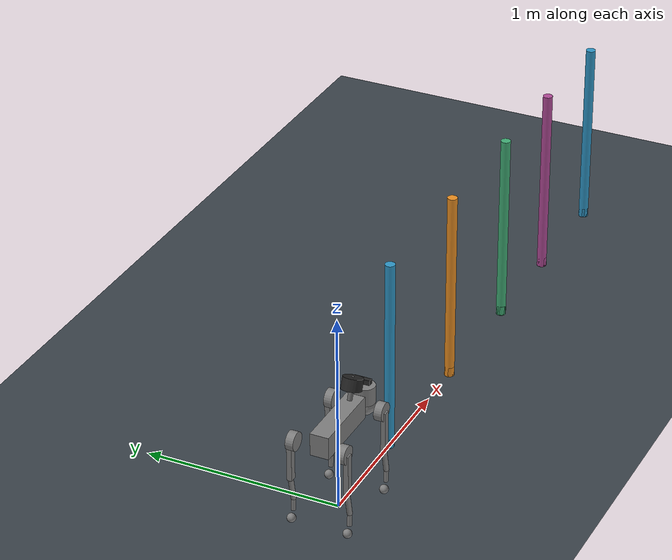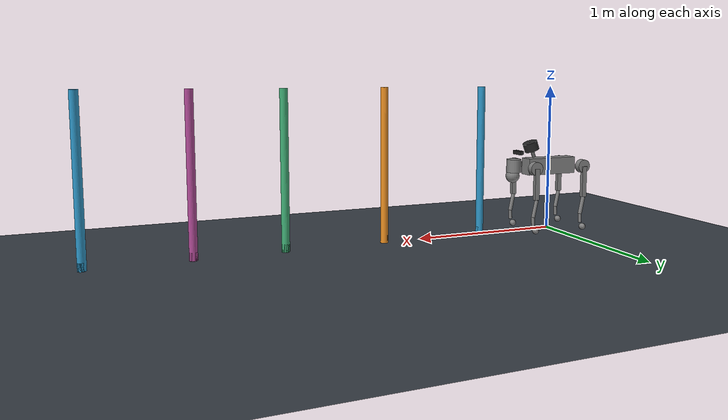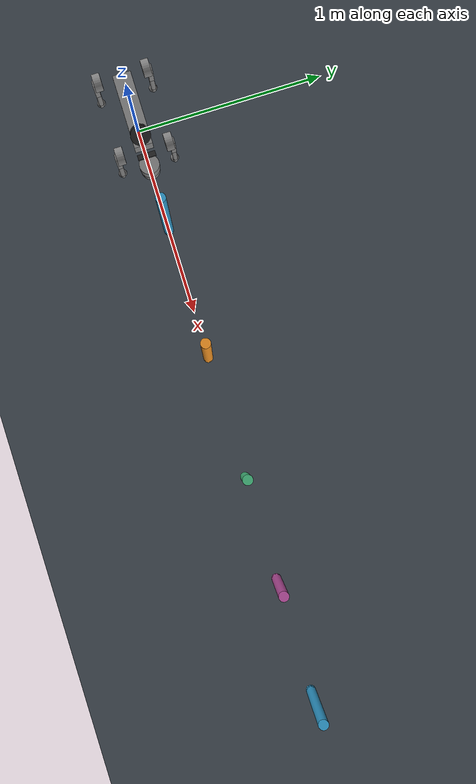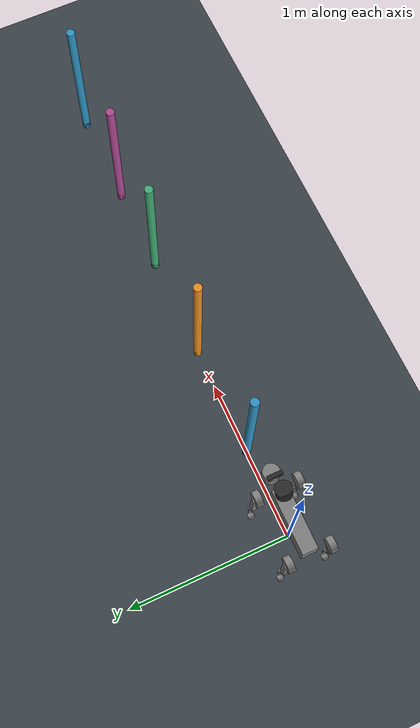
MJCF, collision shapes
<mujoco model="go2_barkour_weave">
  <include file="go2.xml"/>
  <visual>
    <headlight diffuse="0.75 0.75 0.75" ambient="0.35 0.35 0.35" specular="0 0 0"/>
  </visual>
  <worldbody>
    <light pos="1.8 -3 5" dir="0 0 -1" directional="true"/>
    <geom name="floor" type="plane" size="6 3 0.05" friction="1 0.01 0.001"
          rgba="0.23 0.26 0.29 1"/>
    <!-- Tall poles provide the visible weave cue but do not block the robot. -->
    <geom name="weave_pole_1" class="visual" type="cylinder" pos="0.55 0 0.50"
          size="0.025 0.50" rgba="0.18 0.59 0.78 1"/>
    <geom name="weave_pole_2" class="visual" type="cylinder" pos="1.25 0 0.50"
          size="0.025 0.50" rgba="0.92 0.56 0.13 1"/>
    <geom name="weave_pole_3" class="visual" type="cylinder" pos="1.90 0 0.50"
          size="0.025 0.50" rgba="0.25 0.68 0.46 1"/>
    <geom name="weave_pole_4" class="visual" type="cylinder" pos="2.45 0 0.50"
          size="0.025 0.50" rgba="0.69 0.29 0.59 1"/>
    <geom name="weave_pole_5" class="visual" type="cylinder" pos="3.05 0 0.50"
          size="0.025 0.50" rgba="0.18 0.59 0.78 1"/>

    <!-- Only the source-sized 5 cm diameter/high bases participate in collision. -->
    <geom name="weave_pole_base_1" class="collision" type="cylinder" pos="0.55 0 0.025"
          size="0.025 0.025" friction="1 0.01 0.001" rgba="0.18 0.59 0.78 1"/>
    <geom name="weave_pole_base_2" class="collision" type="cylinder" pos="1.25 0 0.025"
          size="0.025 0.025" friction="1 0.01 0.001" rgba="0.92 0.56 0.13 1"/>
    <geom name="weave_pole_base_3" class="collision" type="cylinder" pos="1.90 0 0.025"
          size="0.025 0.025" friction="1 0.01 0.001" rgba="0.25 0.68 0.46 1"/>
    <geom name="weave_pole_base_4" class="collision" type="cylinder" pos="2.45 0 0.025"
          size="0.025 0.025" friction="1 0.01 0.001" rgba="0.69 0.29 0.59 1"/>
    <geom name="weave_pole_base_5" class="collision" type="cylinder" pos="3.05 0 0.025"
          size="0.025 0.025" friction="1 0.01 0.001" rgba="0.18 0.59 0.78 1"/>
    <camera name="evidence" mode="trackcom" pos="0 -1.9 1.1"
            zaxis="0 -0.923 0.385" fovy="34"/>
  </worldbody>
  <keyframe>
    <key name="task_start"
         qpos="0 0 0.29 1 0 0 0 0 0.9 -1.8 0 0.9 -1.8 0 0.9 -1.8 0 0.9 -1.8"
         ctrl="0 0.9 -1.8 0 0.9 -1.8 0 0.9 -1.8 0 0.9 -1.8"/>
  </keyframe>
</mujoco>

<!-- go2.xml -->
<mujoco model="go2">
  <compiler angle="radian" meshdir="assets" autolimits="true" />

  <option cone="elliptic" impratio="100" />

  <visual>
    <global offwidth="800" offheight="600"/>
  </visual>

  <default>
    <default class="go2">
      <geom friction="0.4" margin="0.001" condim="1"/>
      <joint axis="0 1 0" damping="0.1" armature="0.01" frictionloss="0.2"/>
      <motor ctrlrange="-23.7 23.7"/>
      <default class="abduction">
        <joint axis="1 0 0" range="-1.0472 1.0472"/>
      </default>
      <default class="hip">
        <default class="front_hip">
          <joint range="-1.5708 3.4907"/>
        </default>
        <default class="back_hip">
          <joint range="-0.5236 4.5379"/>
        </default>
      </default>
      <default class="knee">
        <joint range="-2.7227 -0.83776"/>
        <motor ctrlrange="-45.43 45.43"/>
      </default>
      <default class="visual">
        <geom type="mesh" contype="0" conaffinity="0" group="2"/>
      </default>
      <default class="collision">
        <geom group="3"/>
        <default class="foot">
          <geom size="0.022" pos="-0.002 0 -0.213" priority="1" condim="6"
            friction="0.8 0.02 0.01"/>
        </default>
      </default>
    </default>
  </default>

  <asset>
    <texture type="skybox" builtin="gradient" rgb1="0.48 0.56 0.66"
      rgb2="0.12 0.14 0.18" width="512" height="3072" />
    <material name="metal" rgba=".9 .95 .95 1" />
    <material name="black" rgba="0 0 0 1" />
    <material name="white" rgba="1 1 1 1" />
    <material name="gray" rgba="0.671705 0.692426 0.774270 1" />

    <mesh file="base_0.obj" />
    <mesh file="base_1.obj" />
    <mesh file="base_2.obj" />
    <mesh file="base_3.obj" />
    <mesh file="base_4.obj" />
    <mesh file="hip_0.obj" />
    <mesh file="hip_1.obj" />
    <mesh file="thigh_0.obj" />
    <mesh file="thigh_1.obj" />
    <mesh file="thigh_mirror_0.obj" />
    <mesh file="thigh_mirror_1.obj" />
    <mesh file="calf_0.obj" />
    <mesh file="calf_1.obj" />
    <mesh file="calf_mirror_0.obj" />
    <mesh file="calf_mirror_1.obj" />
    <mesh file="foot.obj" />
  </asset>

  <worldbody>
    <body name="base_link" pos="0 0 0.445" childclass="go2">
      <inertial pos="0.021112 0 -0.005366" quat="-0.000543471 0.713435 -0.00173769 0.700719"
        mass="6.921"
        diaginertia="0.107027 0.0980771 0.0244531" />
      <freejoint />
      <geom mesh="base_0" material="black" class="visual" />
      <geom mesh="base_1" material="black" class="visual" />
      <geom mesh="base_2" material="black" class="visual" />
      <geom mesh="base_3" material="white" class="visual" />
      <geom mesh="base_4" material="gray" class="visual" />
      <geom size="0.1881 0.04675 0.057" type="box" class="collision" />
      <geom size="0.05 0.045" pos="0.285 0 0.01" type="cylinder" class="collision" />
      <geom size="0.047" pos="0.293 0 -0.06" class="collision" />
      <site name="imu" pos="-0.02557 0 0.04232" />

      <!-- Livox MID-360 — shoulder area, 20 deg FORWARD tilt -->
      <!-- pos: x=0.15 (shoulder), z=0.14 (on bracket above trunk top) -->
      <!-- euler: +0.349 rad around Y = forward lean (top tilts toward +X) -->
      <body name="mid360_lidar" pos="0.15 0.0 0.14" euler="0 0.349 0">
        <geom type="cylinder" size="0.012 0.04" pos="0 0 -0.04" rgba="0.4 0.4 0.4 1"
              mass="0.05" contype="0" conaffinity="0" />
        <geom type="cylinder" size="0.05 0.03" rgba="0.15 0.15 0.15 1" mass="0.265"
              contype="0" conaffinity="0" />
        <site name="mid360_site" pos="0 0 0.03" />
      </body>

      <!-- RealSense D435 — in front of lidar, HORIZONTAL (wide along Y) -->
      <!-- pos: x=0.25 (forward of lidar), z=0.10 (slightly lower) -->
      <!-- euler: +0.087 rad around Y = 5 deg nose-down -->
      <!-- box: 25mm deep (X) x 90mm wide (Y) x 25mm tall (Z) -->
      <body name="d435_camera" pos="0.25 0.0 0.10" euler="0 0.087 0">
        <geom type="box" size="0.0125 0.045 0.0125" rgba="0.15 0.15 0.15 1" mass="0.072"
              contype="0" conaffinity="0" />
        <geom type="cylinder" size="0.008 0.005" pos="0.0 0.02 0.0" euler="1.5708 0 0"
              rgba="0.1 0.1 0.3 1" contype="0" conaffinity="0" />
        <geom type="cylinder" size="0.008 0.005" pos="0.0 -0.02 0.0" euler="1.5708 0 0"
              rgba="0.1 0.1 0.3 1" contype="0" conaffinity="0" />
        <camera name="d435_rgb" pos="0 0 0" xyaxes="0 -1 0 0 0 1" fovy="42" />
        <camera name="d435_depth" pos="0 0 0" xyaxes="0 -1 0 0 0 1" fovy="42" />
      </body>
      <body name="FL_hip" pos="0.1934 0.0465 0">
        <inertial pos="-0.0054 0.00194 -0.000105" quat="0.497014 0.499245 0.505462 0.498237"
          mass="0.678"
          diaginertia="0.00088403 0.000596003 0.000479967" />
        <joint name="FL_hip_joint" class="abduction" />
        <geom mesh="hip_0" material="metal" class="visual" />
        <geom mesh="hip_1" material="gray" class="visual" />
        <geom size="0.046 0.02" pos="0 0.08 0" quat="1 1 0 0" type="cylinder" class="collision" />
        <body name="FL_thigh" pos="0 0.0955 0">
          <inertial pos="-0.00374 -0.0223 -0.0327" quat="0.829533 0.0847635 -0.0200632 0.551623"
            mass="1.152"
            diaginertia="0.00594973 0.00584149 0.000878787" />
          <joint name="FL_thigh_joint" class="front_hip" />
          <geom mesh="thigh_0" material="metal" class="visual" />
          <geom mesh="thigh_1" material="gray" class="visual" />
          <geom size="0.1065 0.01225 0.017" pos="0 0 -0.1065" quat="0.707107 0 0.707107 0"
            type="box" class="collision" />
          <body name="FL_calf" pos="0 0 -0.213">
            <inertial pos="0.00629595 -0.000622121 -0.141417"
              quat="0.710672 0.00154099 -0.00450087 0.703508"
              mass="0.241352" diaginertia="0.0014901 0.00146356 5.31397e-05" />
            <joint name="FL_calf_joint" class="knee" />
            <geom mesh="calf_0" material="gray" class="visual" />
            <geom mesh="calf_1" material="black" class="visual" />
            <geom size="0.012 0.06" pos="0.008 0 -0.06" quat="0.994493 0 -0.104807 0"
              type="cylinder" class="collision" />
            <geom size="0.011 0.0325" pos="0.02 0 -0.148" quat="0.999688 0 0.0249974 0"
              type="cylinder" class="collision" />
            <geom pos="0 0 -0.213" mesh="foot" class="visual" material="black" />
            <geom name="FL" class="foot" />
            <body name="FL_foot" pos="0 0 -0.213" />
          </body>
        </body>
      </body>
      <body name="FR_hip" pos="0.1934 -0.0465 0">
        <inertial pos="-0.0054 -0.00194 -0.000105" quat="0.498237 0.505462 0.499245 0.497014"
          mass="0.678"
          diaginertia="0.00088403 0.000596003 0.000479967" />
        <joint name="FR_hip_joint" class="abduction" />
        <geom mesh="hip_0" material="metal" class="visual" quat="4.63268e-05 1 0 0" />
        <geom mesh="hip_1" material="gray" class="visual" quat="4.63268e-05 1 0 0" />
        <geom size="0.046 0.02" pos="0 -0.08 0" quat="0.707107 0.707107 0 0" type="cylinder"
          class="collision" />
        <body name="FR_thigh" pos="0 -0.0955 0">
          <inertial pos="-0.00374 0.0223 -0.0327" quat="0.551623 -0.0200632 0.0847635 0.829533"
            mass="1.152"
            diaginertia="0.00594973 0.00584149 0.000878787" />
          <joint name="FR_thigh_joint" class="front_hip" />
          <geom mesh="thigh_mirror_0" material="metal" class="visual" />
          <geom mesh="thigh_mirror_1" material="gray" class="visual" />
          <geom size="0.1065 0.01225 0.017" pos="0 0 -0.1065" quat="0.707107 0 0.707107 0"
            type="box" class="collision" />
          <body name="FR_calf" pos="0 0 -0.213">
            <inertial pos="0.00629595 0.000622121 -0.141417"
              quat="0.703508 -0.00450087 0.00154099 0.710672"
              mass="0.241352" diaginertia="0.0014901 0.00146356 5.31397e-05" />
            <joint name="FR_calf_joint" class="knee" />
            <geom mesh="calf_mirror_0" material="gray" class="visual" />
            <geom mesh="calf_mirror_1" material="black" class="visual" />
            <geom size="0.013 0.06" pos="0.01 0 -0.06" quat="0.995004 0 -0.0998334 0"
              type="cylinder" class="collision" />
            <geom size="0.011 0.0325" pos="0.02 0 -0.148" quat="0.999688 0 0.0249974 0"
              type="cylinder" class="collision" />
            <geom pos="0 0 -0.213" mesh="foot" class="visual" material="black" />
            <geom name="FR" class="foot" />
            <body name="FR_foot" pos="0 0 -0.213" />
          </body>
        </body>
      </body>
      <body name="RL_hip" pos="-0.1934 0.0465 0">
        <inertial pos="0.0054 0.00194 -0.000105" quat="0.505462 0.498237 0.497014 0.499245"
          mass="0.678"
          diaginertia="0.00088403 0.000596003 0.000479967" />
        <joint name="RL_hip_joint" class="abduction" />
        <geom mesh="hip_0" material="metal" class="visual" quat="4.63268e-05 0 1 0" />
        <geom mesh="hip_1" material="gray" class="visual" quat="4.63268e-05 0 1 0" />
        <geom size="0.046 0.02" pos="0 0.08 0" quat="0.707107 0.707107 0 0" type="cylinder"
          class="collision" />
        <body name="RL_thigh" pos="0 0.0955 0">
          <inertial pos="-0.00374 -0.0223 -0.0327" quat="0.829533 0.0847635 -0.0200632 0.551623"
            mass="1.152"
            diaginertia="0.00594973 0.00584149 0.000878787" />
          <joint name="RL_thigh_joint" class="back_hip" />
          <geom mesh="thigh_0" material="metal" class="visual" />
          <geom mesh="thigh_1" material="gray" class="visual" />
          <geom size="0.1065 0.01225 0.017" pos="0 0 -0.1065" quat="0.707107 0 0.707107 0"
            type="box" class="collision" />
          <body name="RL_calf" pos="0 0 -0.213">
            <inertial pos="0.00629595 -0.000622121 -0.141417"
              quat="0.710672 0.00154099 -0.00450087 0.703508"
              mass="0.241352" diaginertia="0.0014901 0.00146356 5.31397e-05" />
            <joint name="RL_calf_joint" class="knee" />
            <geom mesh="calf_0" material="gray" class="visual" />
            <geom mesh="calf_1" material="black" class="visual" />
            <geom size="0.013 0.06" pos="0.01 0 -0.06" quat="0.995004 0 -0.0998334 0"
              type="cylinder" class="collision" />
            <geom size="0.011 0.0325" pos="0.02 0 -0.148" quat="0.999688 0 0.0249974 0"
              type="cylinder" class="collision" />
            <geom pos="0 0 -0.213" mesh="foot" class="visual" material="black" />
            <geom name="RL" class="foot" />
            <body name="RL_foot" pos="0 0 -0.213" />
          </body>
        </body>
      </body>
      <body name="RR_hip" pos="-0.1934 -0.0465 0">
        <inertial pos="0.0054 -0.00194 -0.000105" quat="0.499245 0.497014 0.498237 0.505462"
          mass="0.678"
          diaginertia="0.00088403 0.000596003 0.000479967" />
        <joint name="RR_hip_joint" class="abduction" />
        <geom mesh="hip_0" material="metal" class="visual"
          quat="2.14617e-09 4.63268e-05 4.63268e-05 -1" />
        <geom mesh="hip_1" material="gray" class="visual"
          quat="2.14617e-09 4.63268e-05 4.63268e-05 -1" />
        <geom size="0.046 0.02" pos="0 -0.08 0" quat="0.707107 0.707107 0 0" type="cylinder"
          class="collision" />
        <body name="RR_thigh" pos="0 -0.0955 0">
          <inertial pos="-0.00374 0.0223 -0.0327" quat="0.551623 -0.0200632 0.0847635 0.829533"
            mass="1.152"
            diaginertia="0.00594973 0.00584149 0.000878787" />
          <joint name="RR_thigh_joint" class="back_hip" />
          <geom mesh="thigh_mirror_0" material="metal" class="visual" />
          <geom mesh="thigh_mirror_1" material="gray" class="visual" />
          <geom size="0.1065 0.01225 0.017" pos="0 0 -0.1065" quat="0.707107 0 0.707107 0"
            type="box" class="collision" />
          <body name="RR_calf" pos="0 0 -0.213">
            <inertial pos="0.00629595 0.000622121 -0.141417"
              quat="0.703508 -0.00450087 0.00154099 0.710672"
              mass="0.241352" diaginertia="0.0014901 0.00146356 5.31397e-05" />
            <joint name="RR_calf_joint" class="knee" />
            <geom mesh="calf_mirror_0" material="gray" class="visual" />
            <geom mesh="calf_mirror_1" material="black" class="visual" />
            <geom size="0.013 0.06" pos="0.01 0 -0.06" quat="0.995004 0 -0.0998334 0"
              type="cylinder" class="collision" />
            <geom size="0.011 0.0325" pos="0.02 0 -0.148" quat="0.999688 0 0.0249974 0"
              type="cylinder" class="collision" />
            <geom pos="0 0 -0.213" mesh="foot" class="visual" material="black" />
            <geom name="RR" class="foot" />
            <body name="RR_foot" pos="0 0 -0.213" />
          </body>
        </body>
      </body>
    </body>
  </worldbody>

  <actuator>
    <motor class="abduction" name="FR_hip" joint="FR_hip_joint" />
    <motor class="hip" name="FR_thigh" joint="FR_thigh_joint" />
    <motor class="knee" name="FR_calf" joint="FR_calf_joint" />
    <motor class="abduction" name="FL_hip" joint="FL_hip_joint" />
    <motor class="hip" name="FL_thigh" joint="FL_thigh_joint" />
    <motor class="knee" name="FL_calf" joint="FL_calf_joint" />
    <motor class="abduction" name="RR_hip" joint="RR_hip_joint" />
    <motor class="hip" name="RR_thigh" joint="RR_thigh_joint" />
    <motor class="knee" name="RR_calf" joint="RR_calf_joint" />
    <motor class="abduction" name="RL_hip" joint="RL_hip_joint" />
    <motor class="hip" name="RL_thigh" joint="RL_thigh_joint" />
    <motor class="knee" name="RL_calf" joint="RL_calf_joint" />
  </actuator>

  <sensor>
    <jointpos name="FR_hip_pos" joint="FR_hip_joint" />
    <jointpos name="FR_thigh_pos" joint="FR_thigh_joint" />
    <jointpos name="FR_calf_pos" joint="FR_calf_joint" />
    <jointpos name="FL_hip_pos" joint="FL_hip_joint" />
    <jointpos name="FL_thigh_pos" joint="FL_thigh_joint" />
    <jointpos name="FL_calf_pos" joint="FL_calf_joint" />
    <jointpos name="RR_hip_pos" joint="RR_hip_joint" />
    <jointpos name="RR_thigh_pos" joint="RR_thigh_joint" />
    <jointpos name="RR_calf_pos" joint="RR_calf_joint" />
    <jointpos name="RL_hip_pos" joint="RL_hip_joint" />
    <jointpos name="RL_thigh_pos" joint="RL_thigh_joint" />
    <jointpos name="RL_calf_pos" joint="RL_calf_joint" />

    <jointvel name="FR_hip_vel" joint="FR_hip_joint" />
    <jointvel name="FR_thigh_vel" joint="FR_thigh_joint" />
    <jointvel name="FR_calf_vel" joint="FR_calf_joint" />
    <jointvel name="FL_hip_vel" joint="FL_hip_joint" />
    <jointvel name="FL_thigh_vel" joint="FL_thigh_joint" />
    <jointvel name="FL_calf_vel" joint="FL_calf_joint" />
    <jointvel name="RR_hip_vel" joint="RR_hip_joint" />
    <jointvel name="RR_thigh_vel" joint="RR_thigh_joint" />
    <jointvel name="RR_calf_vel" joint="RR_calf_joint" />
    <jointvel name="RL_hip_vel" joint="RL_hip_joint" />
    <jointvel name="RL_thigh_vel" joint="RL_thigh_joint" />
    <jointvel name="RL_calf_vel" joint="RL_calf_joint" />

    <jointactuatorfrc name="FR_hip_torque" joint="FR_hip_joint" noise="0.01" />
    <jointactuatorfrc name="FR_thigh_torque" joint="FR_thigh_joint" noise="0.01" />
    <jointactuatorfrc name="FR_calf_torque" joint="FR_calf_joint" noise="0.01" />
    <jointactuatorfrc name="FL_hip_torque" joint="FL_hip_joint" noise="0.01" />
    <jointactuatorfrc name="FL_thigh_torque" joint="FL_thigh_joint" noise="0.01" />
    <jointactuatorfrc name="FL_calf_torque" joint="FL_calf_joint" noise="0.01" />
    <jointactuatorfrc name="RR_hip_torque" joint="RR_hip_joint" noise="0.01" />
    <jointactuatorfrc name="RR_thigh_torque" joint="RR_thigh_joint" noise="0.01" />
    <jointactuatorfrc name="RR_calf_torque" joint="RR_calf_joint" noise="0.01" />
    <jointactuatorfrc name="RL_hip_torque" joint="RL_hip_joint" noise="0.01" />
    <jointactuatorfrc name="RL_thigh_torque" joint="RL_thigh_joint" noise="0.01" />
    <jointactuatorfrc name="RL_calf_torque" joint="RL_calf_joint" noise="0.01" />

    <framequat name="imu_quat" objtype="site" objname="imu" />
    <gyro name="imu_gyro" site="imu" />
    <accelerometer name="imu_acc" site="imu" />

    <framepos name="frame_pos" objtype="site" objname="imu" />
    <framelinvel name="frame_vel" objtype="site" objname="imu" />
  </sensor>

  <keyframe>
    <key name="home" qpos="0 0 0.29 1 0 0 0 0 0.9 -1.8 0 0.9 -1.8 0 0.9 -1.8 0 0.9 -1.8"
      ctrl="0 0.9 -1.8 0 0.9 -1.8 0 0.9 -1.8 0 0.9 -1.8" />
  </keyframe>
</mujoco>
